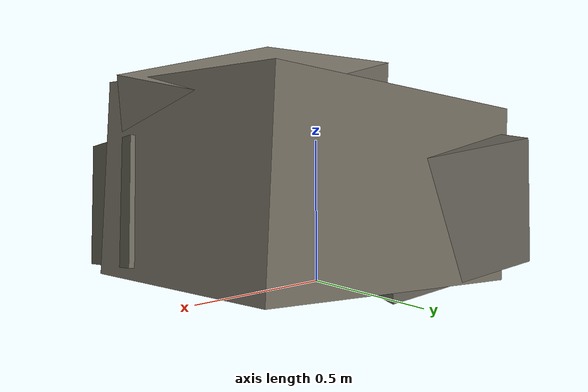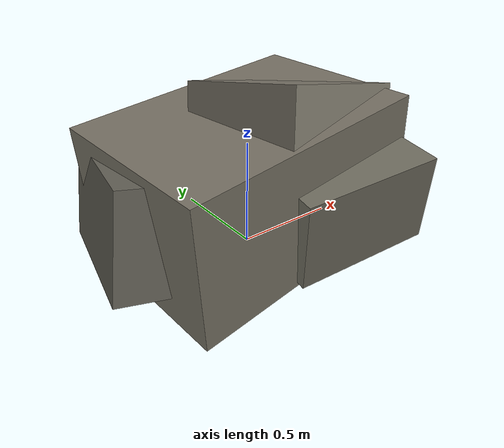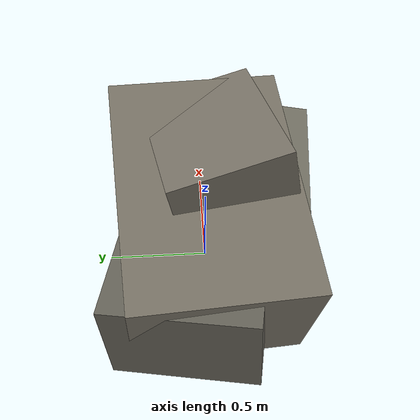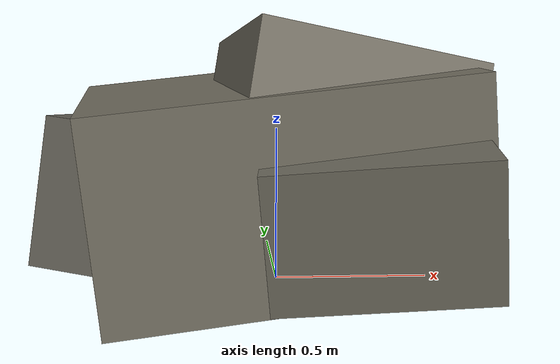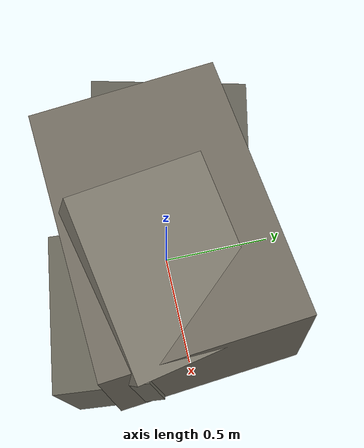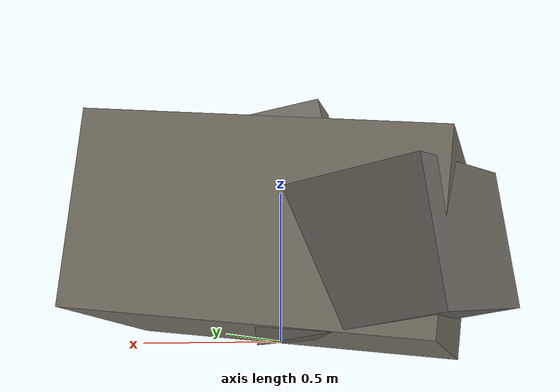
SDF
<?xml version="1.0"?>
<sdf version="1.9">
  <model name="surf_boulder">
    <static>true</static>
    <link name="boulder">
      <collision name="main_collision">
        <pose>0 0 0.34 0.04 -0.10 0.08</pose>
        <geometry><box><size>1.18 0.82 0.64</size></box></geometry>
      </collision>
      <collision name="shoulder_collision">
        <pose>-0.37 0.08 0.26 -0.08 0.13 -0.20</pose>
        <geometry><box><size>0.62 0.68 0.46</size></box></geometry>
      </collision>

      <visual name="main_stone_visual">
        <pose>0 0 0.34 0.04 -0.10 0.08</pose>
        <geometry><box><size>1.18 0.82 0.64</size></box></geometry>
        <material>
          <ambient>0.30 0.29 0.26 1</ambient>
          <diffuse>0.46 0.44 0.39 1</diffuse>
          <specular>0.045 0.045 0.040 1</specular>
        </material>
      </visual>
      <visual name="left_stone_visual">
        <pose>-0.37 0.08 0.27 -0.08 0.13 -0.20</pose>
        <geometry><box><size>0.62 0.68 0.46</size></box></geometry>
        <material>
          <ambient>0.26 0.255 0.235 1</ambient>
          <diffuse>0.40 0.39 0.35 1</diffuse>
          <specular>0.040 0.040 0.035 1</specular>
        </material>
      </visual>
      <visual name="top_stone_visual">
        <pose>0.20 -0.06 0.61 -0.16 0.20 0.18</pose>
        <geometry><box><size>0.72 0.56 0.28</size></box></geometry>
        <material>
          <ambient>0.34 0.33 0.30 1</ambient>
          <diffuse>0.50 0.48 0.43 1</diffuse>
          <specular>0.045 0.045 0.040 1</specular>
        </material>
      </visual>
      <visual name="front_stone_visual">
        <pose>0.28 -0.32 0.27 0.13 -0.08 -0.12</pose>
        <geometry><box><size>0.66 0.38 0.42</size></box></geometry>
        <material>
          <ambient>0.28 0.275 0.25 1</ambient>
          <diffuse>0.43 0.42 0.37 1</diffuse>
          <specular>0.040 0.040 0.035 1</specular>
        </material>
      </visual>
    </link>
  </model>
</sdf>
